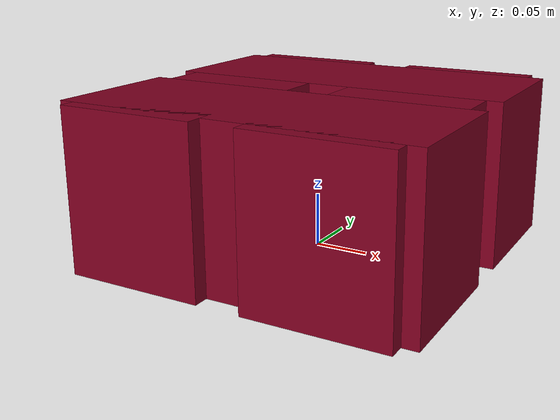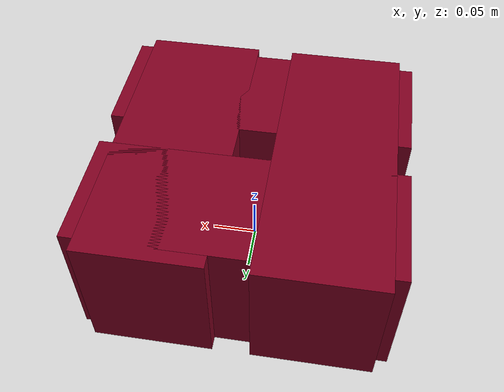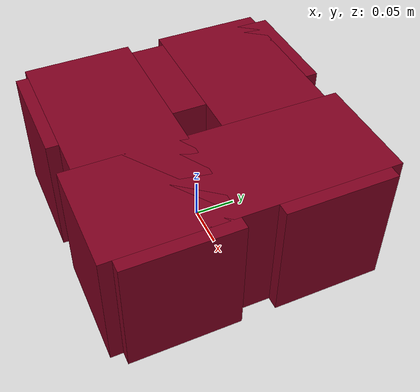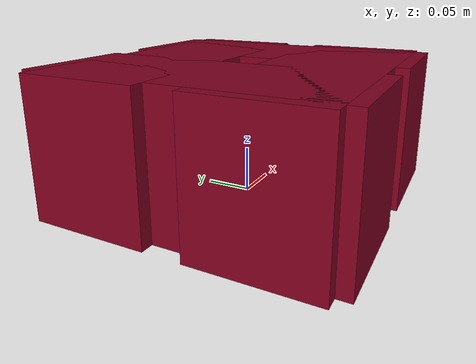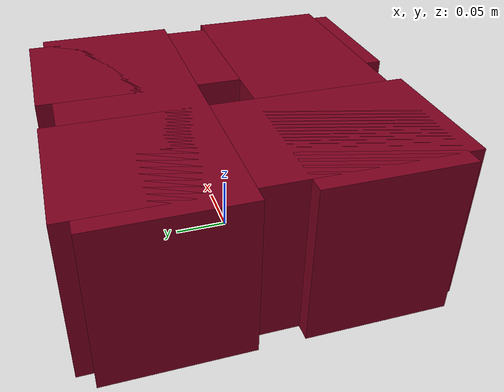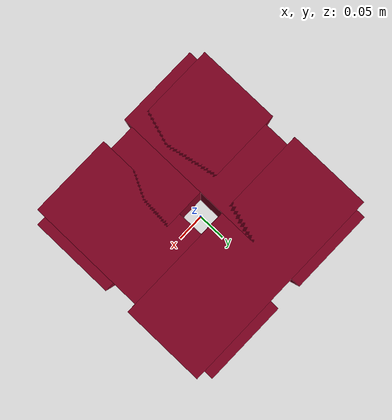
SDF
<?xml version="1.0"?>
<sdf version='1.6'>
<model name="peg_box">
  <link name="base_link">
    <inertial>
      <pose frame=''>0 0 0.025 0 0 0 </pose>
      <mass>1.0</mass>
        <inertia>
          <ixx>1.17e-5</ixx>
          <ixy>0</ixy>
          <ixz>0</ixz>
          <iyy>1.9e-5</iyy>
          <iyz>0</iyz>
          <izz>1.9e-5</izz>
        </inertia>
    </inertial>

    <visual name='top'>
      <pose frame=''>0 0.0855 0.075 0 0 0</pose>
      <geometry>
        <box>
          <size>0.33 0.13 0.15</size>
        </box>
      </geometry>
      <material>
        <diffuse>0.502 0.0 0.125 1.0</diffuse>
      </material>
    </visual>
    <collision name='top_collision'>
      <pose frame=''>0 0.0855 0.075 0 0 0</pose>
      <geometry>
        <box>
          <size>0.33 0.13 0.15</size>
        </box>
      </geometry>
    </collision>

    <visual name='bottom'>
      <pose frame=''>0 -0.0855 0.075 0 0 0</pose>
      <geometry>
        <box>
          <size>0.33 0.13 0.15</size>
        </box>
      </geometry>
      <material>
        <diffuse>0.502 0.0 0.125 1.0</diffuse>
      </material>
    </visual>
    <collision name='bottom_collision'>
      <pose frame=''>0 -0.0855 0.075 0 0 0</pose>
      <geometry>
        <box>
          <size>0.33 0.13 0.15</size>
        </box>
      </geometry>
    </collision>

    <visual name='left'>
      <pose frame=''>-0.0855 0.0 0.075 0 0 0</pose>
      <geometry>
        <box>
          <size>0.13 0.33 0.15</size>
        </box>
      </geometry>
      <material>
        <diffuse>0.502 0.0 0.125 1.0</diffuse>
      </material>
    </visual>
    <collision name='left_collision'>
      <pose frame=''>-0.0855 0.0 0.075 0 0 0</pose>
      <geometry>
        <box>
          <size>0.13 0.33 0.15</size>
        </box>
      </geometry>
    </collision>

    <visual name='right'>
      <pose frame=''>0.0855 0.0 0.075 0 0 0</pose>
      <geometry>
        <box>
          <size>0.13 0.33 0.15</size>
        </box>
      </geometry>
      <material>
        <diffuse>0.502 0.0 0.125 1.0</diffuse>
      </material>
    </visual>
    <collision name='right_collision'>
      <pose frame=''>0.0855 0.0 0.075 0 0 0</pose>
      <geometry>
        <box>
          <size>0.13 0.33 0.15</size>
        </box>
      </geometry>
      <material>
        <diffuse>0.502 0.0 0.125 1.0</diffuse>
      </material>
    </collision>

   </link>
</model>
</sdf>
